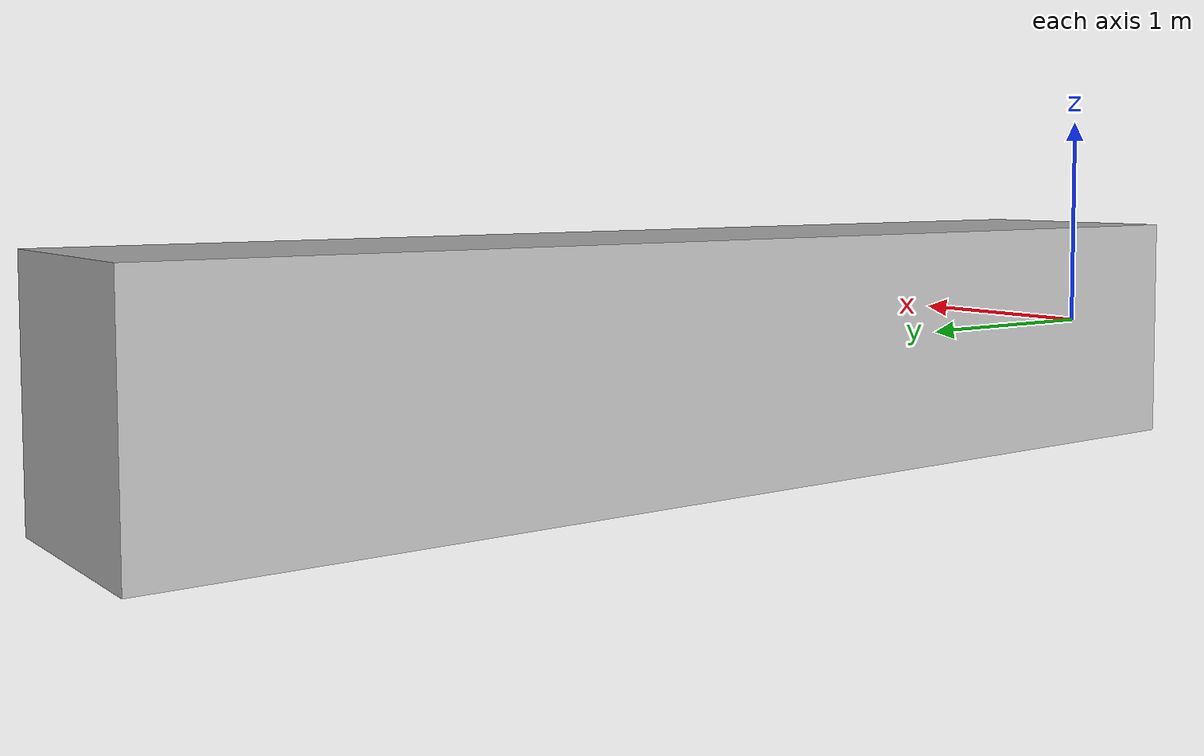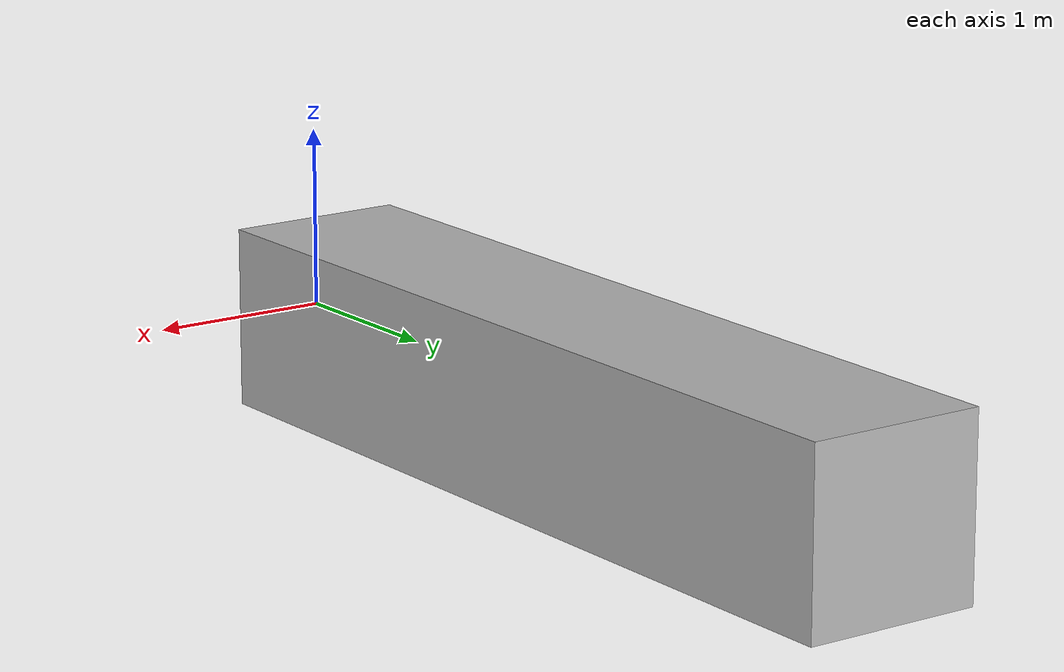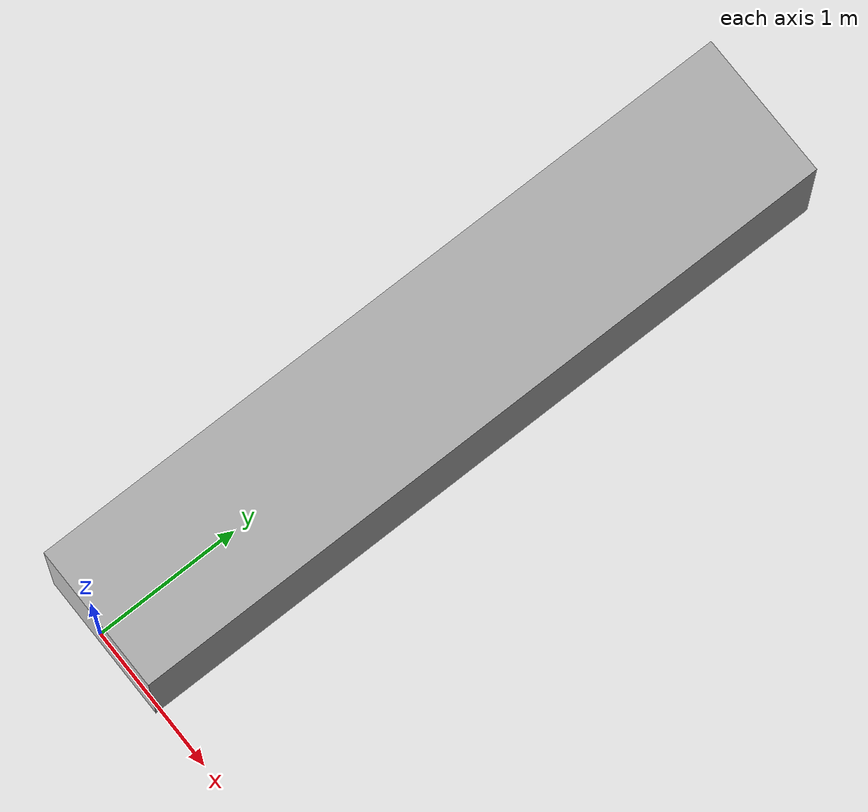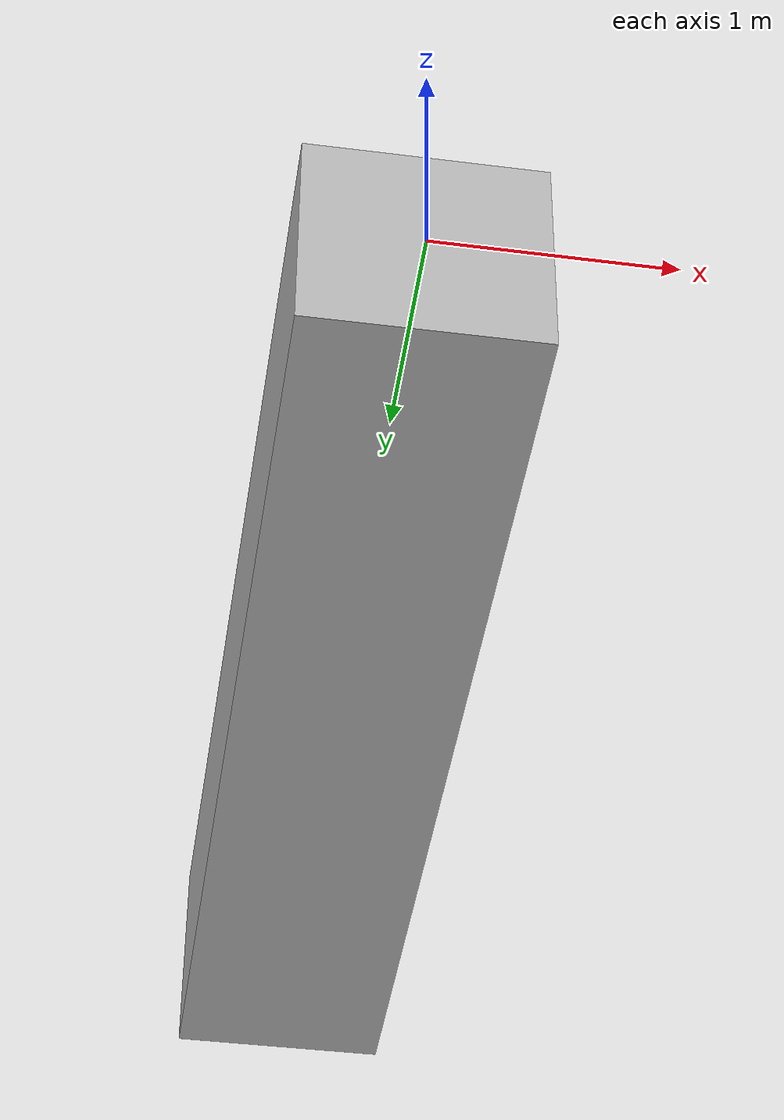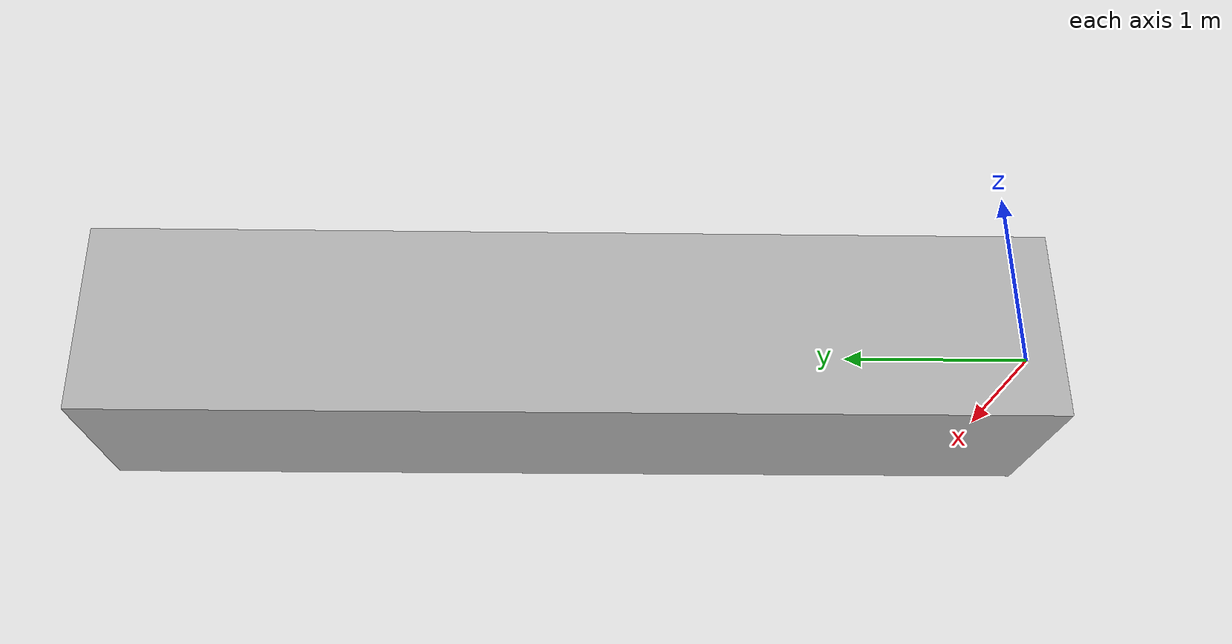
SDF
<?xml version="1.0" ?>
<sdf version="1.6">
    <!-- the origin of this model is at the middle of the 'top' of the belt -->
    <model name="conveyor_belt">
        <static>true</static>
        <plugin name="conveyor_belt_plugin" filename="libconveyor_belt_plugin.so">
            <belt_start_velocity>0.2</belt_start_velocity>
            <velocity_axis>0 1 0</velocity_axis>
            <contact_sensor_name>conveyor_belt_contact</contact_sensor_name>
            <log_directory>/home.local/faichele/Documents/gazebo_mouse_leg_stats</log_directory>
        </plugin>
        <link name="belt">
            <pose>0 2.5 0 0 0 0</pose>
            <sensor name='conveyor_belt_contact' type='contact'>
                <update_rate>10</update_rate>
                <contact>
                    <collision>belt_collision</collision>
                </contact>
            </sensor>
            <inertial>
                <mass>10</mass>
                <inertia>
                    <ixx>20.841</ixx>
                    <ixy>0</ixy>
                    <ixz>0</ixz>
                    <iyy>0.8417</iyy>
                    <iyz>0</iyz>
                    <izz>21.66667</izz>
                </inertia>
            </inertial>
            <collision name="belt_collision">
            <geometry>
                <box>
                <size>1 5 1</size>
                </box>
            </geometry>
            <surface>
                <friction>
                    <ode>
                        <mu>0.0</mu>
                        <mu2>0.0</mu2>
                    </ode>
                    <torsional>
                        <coefficient>1000.0</coefficient>
                        <patch_radius>0.1</patch_radius>
                    </torsional>
                </friction>
            </surface>
            </collision>
            <visual name="visual">
            <geometry>
                <box>
                <size>1 5 1</size>
                </box>
            </geometry>
            </visual>
        </link>
    </model>
</sdf>
